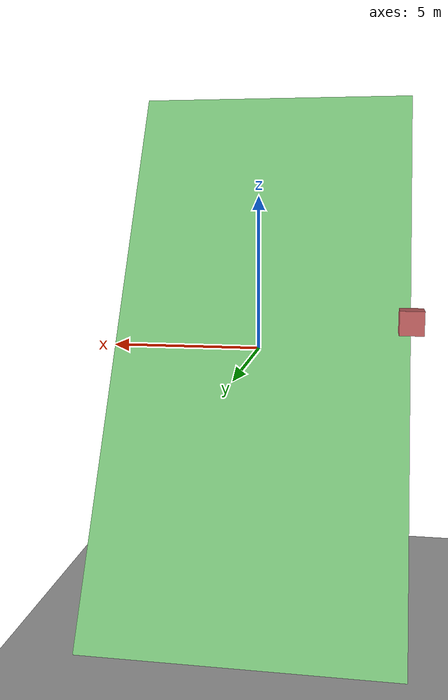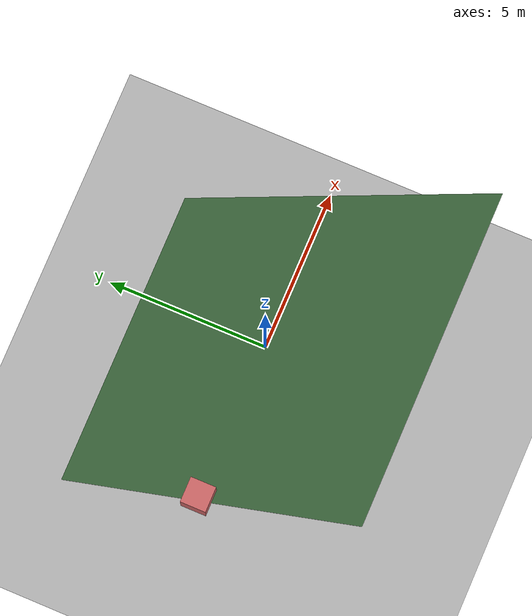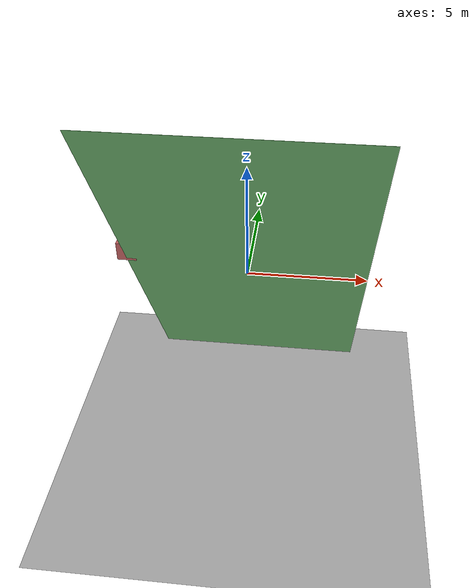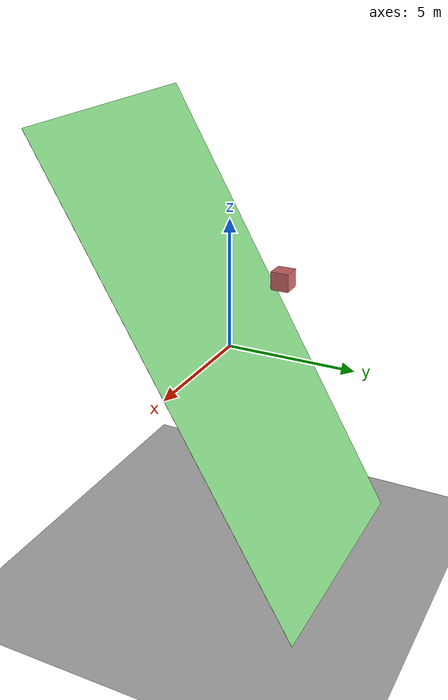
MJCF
<mujoco>
  <option gravity="0 0 -9.81" />
  <worldbody>
    <body name="object_2" pos="0 0 0">
      <geom type="plane" size="5 10 0.1" rgba="0.5 0.8 0.5 1" friction="0.4 0.4 0.4" quat="0.5 0.86 0 0" />
    </body>
    <body name="object_3" pos="-10 0 -10">
      <geom type="plane" size="25 25 0.1" rgba="0.7 0.7 0.7 1" friction="1 1 1" />
    </body>
    <body name="object_1" pos="-5 0 1">
      <geom type="box" size="0.4 0.4 0.4" density="1" rgba="0.8 0.4 0.4 1" />
      <joint name="object_1_joint" type="free" />
    </body>
  </worldbody>
</mujoco>
